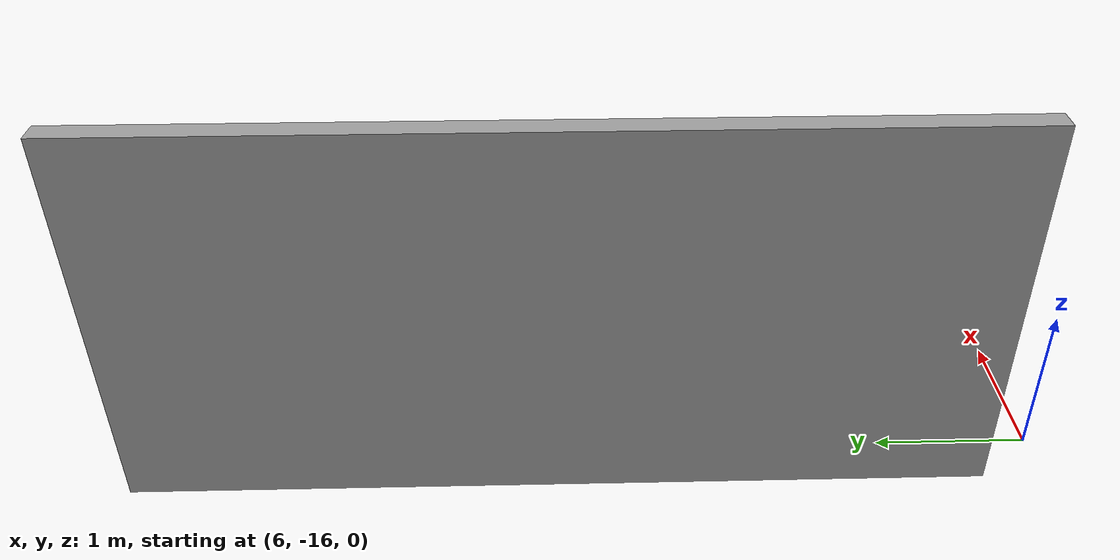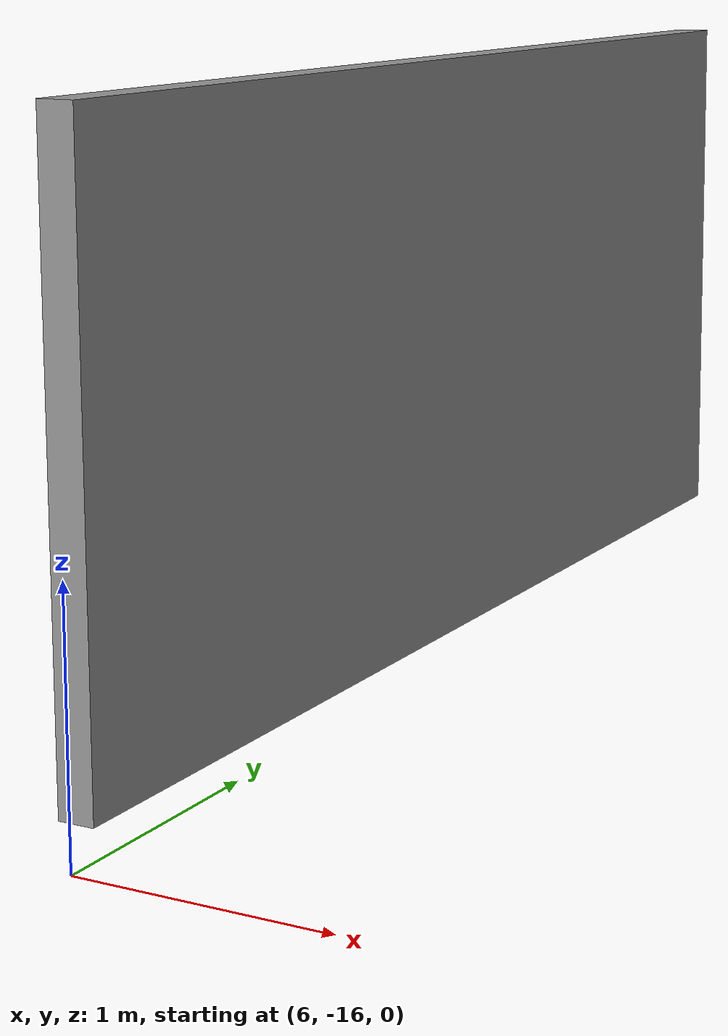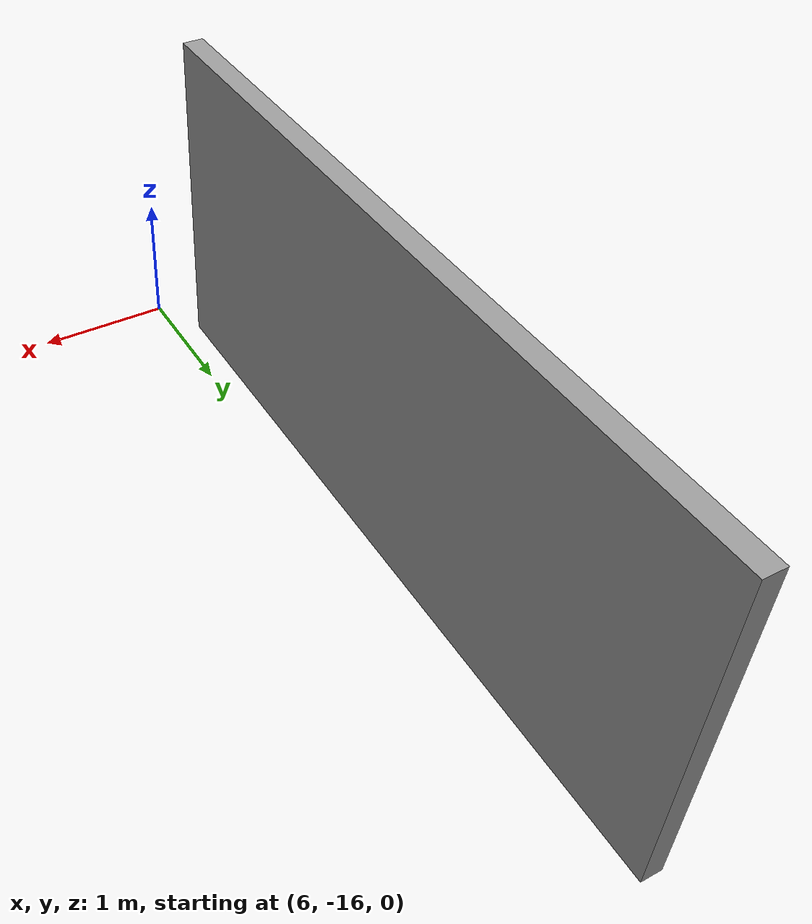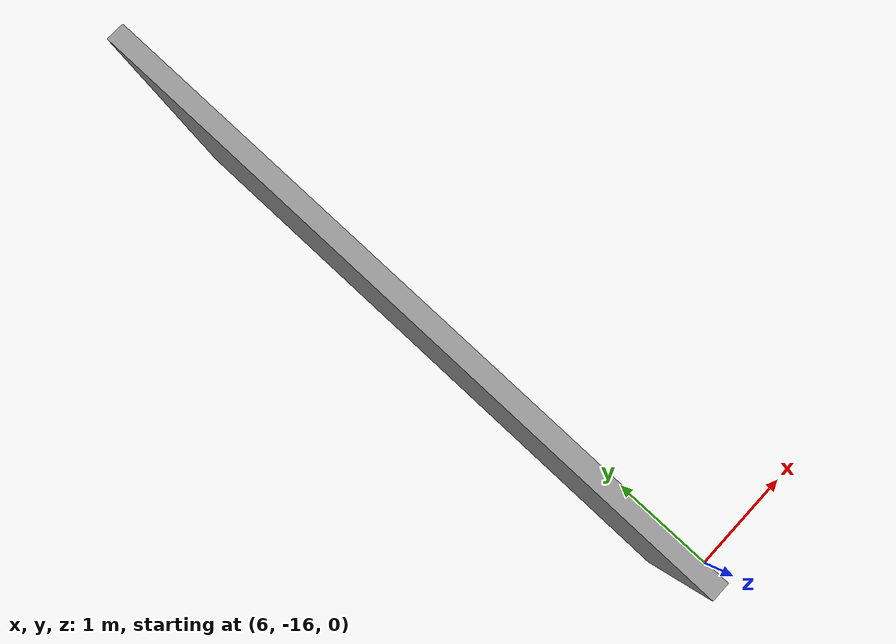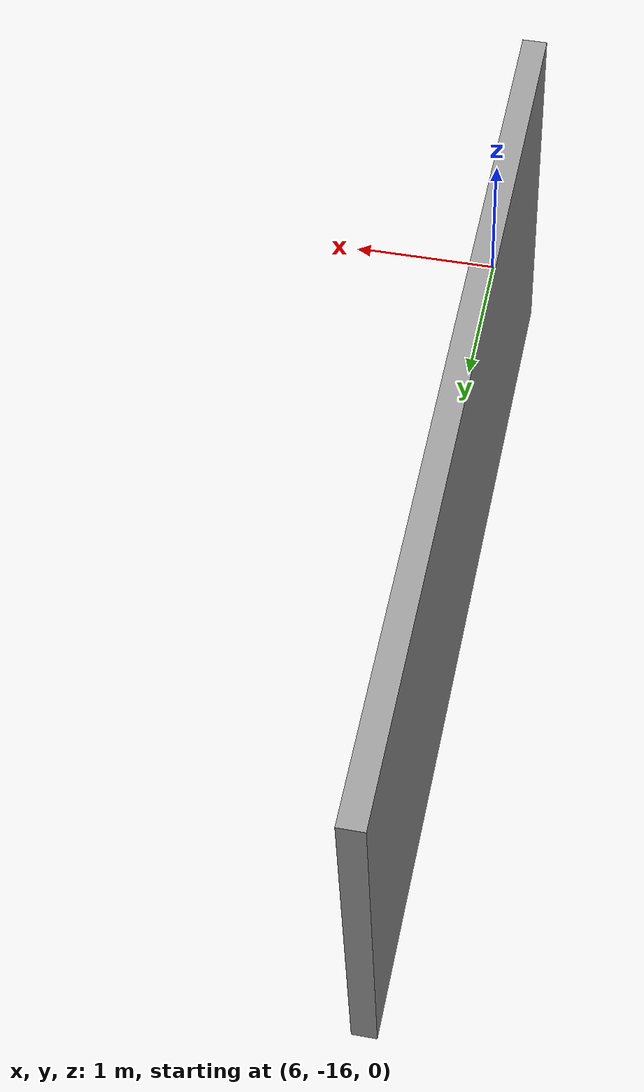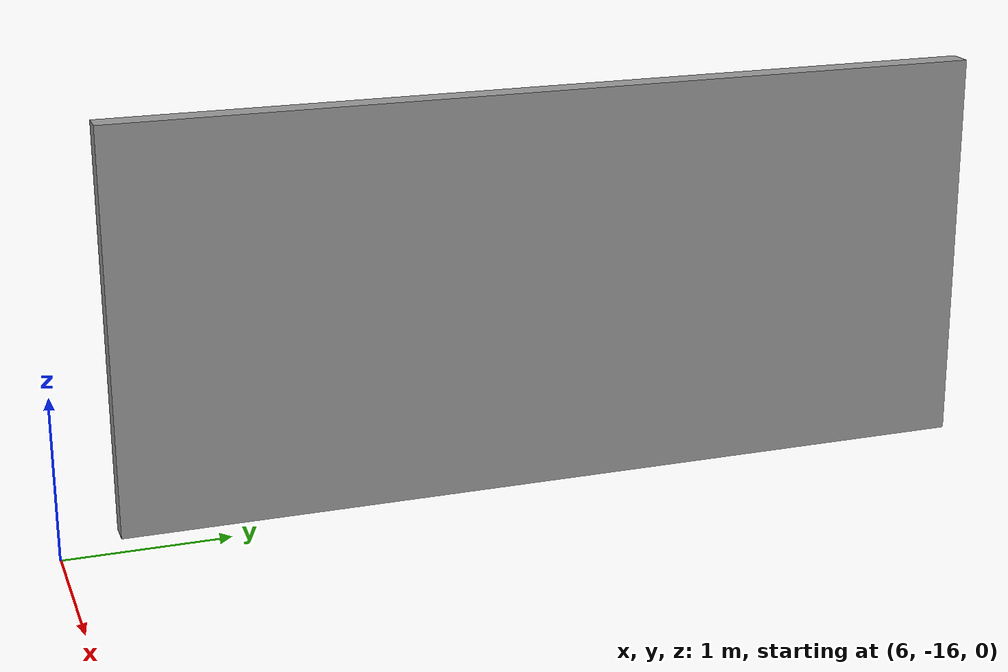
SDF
<?xml version='1.0'?>
<sdf version='1.7'>
  <model name='simple_wall'>
    <pose>2.90663 -7.81239 0 0 -0 0</pose>
    <link name='Wall_11'>
      <collision name='Wall_11_Collision'>
        <geometry>
          <box>
            <size>5.5 0.15 2.5</size>
          </box>
        </geometry>
        <pose>0 0 1.25 0 -0 0</pose>
      </collision>
      <visual name='Wall_11_Visual'>
        <pose>0 0 1.25 0 -0 0</pose>
        <geometry>
          <box>
            <size>5.5 0.15 2.5</size>
          </box>
        </geometry>
        <material>
          <script>
            <uri>file://media/materials/scripts/gazebo.material</uri>
            <name>Gazebo/Grey</name>
          </script>
          <ambient>1 1 1 1</ambient>
        </material>
        <meta>
          <layer>0</layer>
        </meta>
      </visual>
      <pose>2.83163 -5.06239 0 0 -0 1.5708</pose>
    </link>
    <static>1</static>
  </model>
</sdf>
